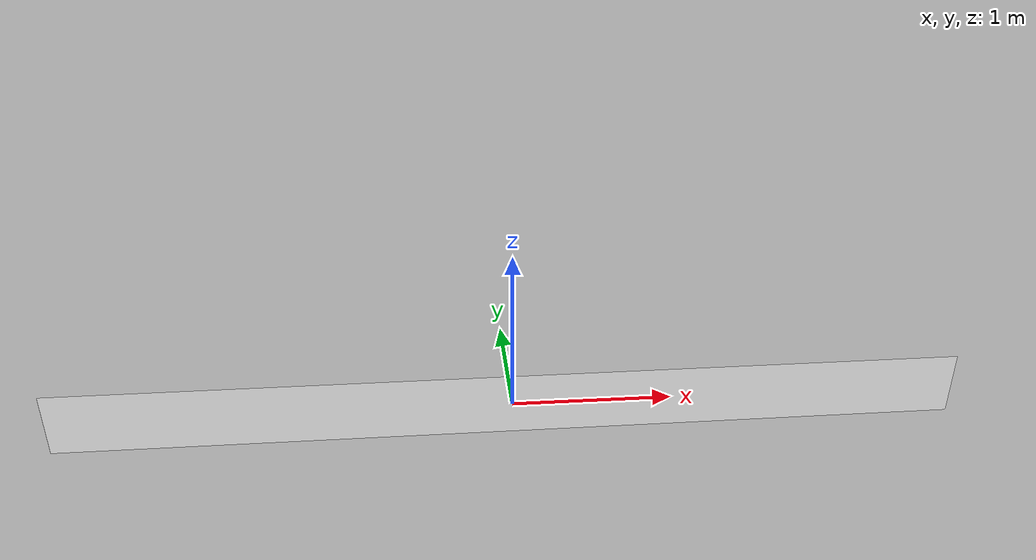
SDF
<?xml version="1.0"?>
<sdf version='1.5'>
  <model name="wall">
  <link name='wall'>
    <pose>0 0 0 0 0 0</pose>
    <inertial>
      <inertia>
        <ixx>1e-6</ixx>
        <ixy>0</ixy>
        <ixz>0</ixz>
        <iyy>1e-6</iyy>
        <iyz>0</iyz>
        <izz>1e-6</izz>
      </inertia>
      <mass>1e-6</mass>
    </inertial>
    <collision name='collision'>
      <pose>0 0 0 0 0 0</pose>
      <geometry>
        <box>
          <size>5.7 1e-6 0.4</size>
        </box>
      </geometry>
    </collision>
    <visual name='visual'>
      <geometry>
        <box>
          <size>5.7 1e-6 0.4</size>
        </box>
      </geometry>
      <material>
        <ambient>0.6 0.6 0.6 1</ambient>
        <diffuse>1 1 1 1</diffuse>
        <specular>0 0.5 0 0</specular>
        <emissive>0 0 0 1</emissive>
      </material>
    </visual>
  </link>
</model>
</sdf>
